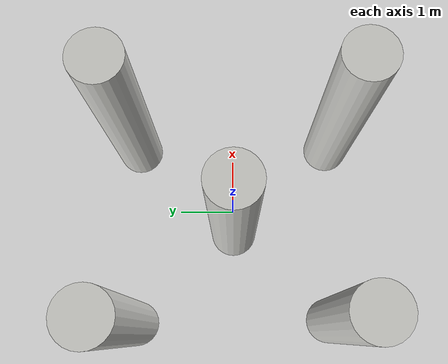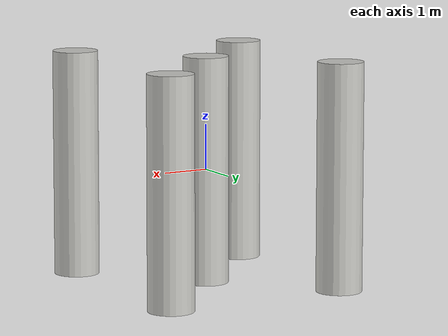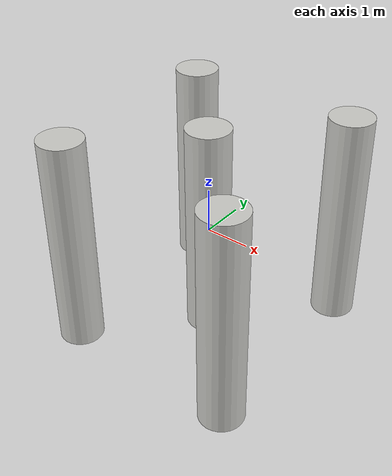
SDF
<?xml version='1.0'?>
<sdf version='1.7'>
  <model name='obstacles_2'>
    <link name='link_0'>
      <inertial>
        <mass>1</mass>
        <inertia>
          <ixx>0.145833</ixx>
          <ixy>0</ixy>
          <ixz>0</ixz>
          <iyy>0.145833</iyy>
          <iyz>0</iyz>
          <izz>0.125</izz>
        </inertia>
      </inertial>
      <pose>-0.004291 -0.013346 0 0 -0 0</pose>
      <visual name='visual'>
        <pose>0 0 0 0 -0 0</pose>
        <geometry>
          <cylinder>
            <radius>0.5</radius>
            <length>5</length>
          </cylinder>
        </geometry>
        <material>
          <lighting>1</lighting>
          <script>
            <uri>file://media/materials/scripts/gazebo.material</uri>
            <name>Gazebo/CeilingTiled</name>
          </script>
          <shader type='pixel'/>
        </material>
        <transparency>0</transparency>
        <cast_shadows>1</cast_shadows>
      </visual>
      <collision name='collision'>
        <laser_retro>0</laser_retro>
        <max_contacts>10</max_contacts>
        <pose>0 0 0 0 -0 0</pose>
        <geometry>
          <cylinder>
            <radius>0.5</radius>
            <length>5</length>
          </cylinder>
        </geometry>
        <surface>
          <friction>
            <ode>
              <mu>1</mu>
              <mu2>1</mu2>
              <fdir1>0 0 0</fdir1>
              <slip1>0</slip1>
              <slip2>0</slip2>
            </ode>
            <torsional>
              <coefficient>1</coefficient>
              <patch_radius>0</patch_radius>
              <surface_radius>0</surface_radius>
              <use_patch_radius>1</use_patch_radius>
              <ode>
                <slip>0</slip>
              </ode>
            </torsional>
          </friction>
          <bounce>
            <restitution_coefficient>0</restitution_coefficient>
            <threshold>1e+06</threshold>
          </bounce>
          <contact>
            <collide_without_contact>0</collide_without_contact>
            <collide_without_contact_bitmask>1</collide_without_contact_bitmask>
            <collide_bitmask>1</collide_bitmask>
            <ode>
              <soft_cfm>0</soft_cfm>
              <soft_erp>0.2</soft_erp>
              <kp>1e+13</kp>
              <kd>1</kd>
              <max_vel>0.01</max_vel>
              <min_depth>0</min_depth>
            </ode>
            <bullet>
              <split_impulse>1</split_impulse>
              <split_impulse_penetration_threshold>-0.01</split_impulse_penetration_threshold>
              <soft_cfm>0</soft_cfm>
              <soft_erp>0.2</soft_erp>
              <kp>1e+13</kp>
              <kd>1</kd>
            </bullet>
          </contact>
        </surface>
      </collision>
    </link>
    <link name='link_1'>
      <inertial>
        <mass>1</mass>
        <inertia>
          <ixx>0.145833</ixx>
          <ixy>0</ixy>
          <ixz>0</ixz>
          <iyy>0.145833</iyy>
          <iyz>0</iyz>
          <izz>0.125</izz>
        </inertia>
      </inertial>
      <pose>-2.07287 2.20557 0 0 -0 0</pose>
      <visual name='visual'>
        <pose>0 0 0 0 -0 0</pose>
        <geometry>
          <cylinder>
            <radius>0.5</radius>
            <length>5</length>
          </cylinder>
        </geometry>
        <material>
          <lighting>1</lighting>
          <script>
            <uri>file://media/materials/scripts/gazebo.material</uri>
            <name>Gazebo/CeilingTiled</name>
          </script>
          <shader type='pixel'/>
        </material>
        <transparency>0</transparency>
        <cast_shadows>1</cast_shadows>
      </visual>
      <collision name='collision'>
        <laser_retro>0</laser_retro>
        <max_contacts>10</max_contacts>
        <pose>0 0 0 0 -0 0</pose>
        <geometry>
          <cylinder>
            <radius>0.5</radius>
            <length>5</length>
          </cylinder>
        </geometry>
        <surface>
          <friction>
            <ode>
              <mu>1</mu>
              <mu2>1</mu2>
              <fdir1>0 0 0</fdir1>
              <slip1>0</slip1>
              <slip2>0</slip2>
            </ode>
            <torsional>
              <coefficient>1</coefficient>
              <patch_radius>0</patch_radius>
              <surface_radius>0</surface_radius>
              <use_patch_radius>1</use_patch_radius>
              <ode>
                <slip>0</slip>
              </ode>
            </torsional>
          </friction>
          <bounce>
            <restitution_coefficient>0</restitution_coefficient>
            <threshold>1e+06</threshold>
          </bounce>
          <contact>
            <collide_without_contact>0</collide_without_contact>
            <collide_without_contact_bitmask>1</collide_without_contact_bitmask>
            <collide_bitmask>1</collide_bitmask>
            <ode>
              <soft_cfm>0</soft_cfm>
              <soft_erp>0.2</soft_erp>
              <kp>1e+13</kp>
              <kd>1</kd>
              <max_vel>0.01</max_vel>
              <min_depth>0</min_depth>
            </ode>
            <bullet>
              <split_impulse>1</split_impulse>
              <split_impulse_penetration_threshold>-0.01</split_impulse_penetration_threshold>
              <soft_cfm>0</soft_cfm>
              <soft_erp>0.2</soft_erp>
              <kp>1e+13</kp>
              <kd>1</kd>
            </bullet>
          </contact>
        </surface>
      </collision>
    </link>
    <link name='link_2'>
      <inertial>
        <mass>1</mass>
        <inertia>
          <ixx>0.145833</ixx>
          <ixy>0</ixy>
          <ixz>0</ixz>
          <iyy>0.145833</iyy>
          <iyz>0</iyz>
          <izz>0.125</izz>
        </inertia>
      </inertial>
      <pose>2.03047 2.21543 0 0 -0 0</pose>
      <visual name='visual'>
        <pose>0 0 0 0 -0 0</pose>
        <geometry>
          <cylinder>
            <radius>0.5</radius>
            <length>5</length>
          </cylinder>
        </geometry>
        <material>
          <lighting>1</lighting>
          <script>
            <uri>file://media/materials/scripts/gazebo.material</uri>
            <name>Gazebo/CeilingTiled</name>
          </script>
          <shader type='pixel'/>
        </material>
        <transparency>0</transparency>
        <cast_shadows>1</cast_shadows>
      </visual>
      <collision name='collision'>
        <laser_retro>0</laser_retro>
        <max_contacts>10</max_contacts>
        <pose>0 0 0 0 -0 0</pose>
        <geometry>
          <cylinder>
            <radius>0.5</radius>
            <length>5</length>
          </cylinder>
        </geometry>
        <surface>
          <friction>
            <ode>
              <mu>1</mu>
              <mu2>1</mu2>
              <fdir1>0 0 0</fdir1>
              <slip1>0</slip1>
              <slip2>0</slip2>
            </ode>
            <torsional>
              <coefficient>1</coefficient>
              <patch_radius>0</patch_radius>
              <surface_radius>0</surface_radius>
              <use_patch_radius>1</use_patch_radius>
              <ode>
                <slip>0</slip>
              </ode>
            </torsional>
          </friction>
          <bounce>
            <restitution_coefficient>0</restitution_coefficient>
            <threshold>1e+06</threshold>
          </bounce>
          <contact>
            <collide_without_contact>0</collide_without_contact>
            <collide_without_contact_bitmask>1</collide_without_contact_bitmask>
            <collide_bitmask>1</collide_bitmask>
            <ode>
              <soft_cfm>0</soft_cfm>
              <soft_erp>0.2</soft_erp>
              <kp>1e+13</kp>
              <kd>1</kd>
              <max_vel>0.01</max_vel>
              <min_depth>0</min_depth>
            </ode>
            <bullet>
              <split_impulse>1</split_impulse>
              <split_impulse_penetration_threshold>-0.01</split_impulse_penetration_threshold>
              <soft_cfm>0</soft_cfm>
              <soft_erp>0.2</soft_erp>
              <kp>1e+13</kp>
              <kd>1</kd>
            </bullet>
          </contact>
        </surface>
      </collision>
    </link>
    <link name='link_3'>
      <inertial>
        <mass>1</mass>
        <inertia>
          <ixx>0.145833</ixx>
          <ixy>0</ixy>
          <ixz>0</ixz>
          <iyy>0.145833</iyy>
          <iyz>0</iyz>
          <izz>0.125</izz>
        </inertia>
      </inertial>
      <pose>-2.01899 -2.17689 0 0 -0 0</pose>
      <visual name='visual'>
        <pose>0 0 0 0 -0 0</pose>
        <geometry>
          <cylinder>
            <radius>0.5</radius>
            <length>5</length>
          </cylinder>
        </geometry>
        <material>
          <lighting>1</lighting>
          <script>
            <uri>file://media/materials/scripts/gazebo.material</uri>
            <name>Gazebo/CeilingTiled</name>
          </script>
          <shader type='pixel'/>
        </material>
        <transparency>0</transparency>
        <cast_shadows>1</cast_shadows>
      </visual>
      <collision name='collision'>
        <laser_retro>0</laser_retro>
        <max_contacts>10</max_contacts>
        <pose>0 0 0 0 -0 0</pose>
        <geometry>
          <cylinder>
            <radius>0.5</radius>
            <length>5</length>
          </cylinder>
        </geometry>
        <surface>
          <friction>
            <ode>
              <mu>1</mu>
              <mu2>1</mu2>
              <fdir1>0 0 0</fdir1>
              <slip1>0</slip1>
              <slip2>0</slip2>
            </ode>
            <torsional>
              <coefficient>1</coefficient>
              <patch_radius>0</patch_radius>
              <surface_radius>0</surface_radius>
              <use_patch_radius>1</use_patch_radius>
              <ode>
                <slip>0</slip>
              </ode>
            </torsional>
          </friction>
          <bounce>
            <restitution_coefficient>0</restitution_coefficient>
            <threshold>1e+06</threshold>
          </bounce>
          <contact>
            <collide_without_contact>0</collide_without_contact>
            <collide_without_contact_bitmask>1</collide_without_contact_bitmask>
            <collide_bitmask>1</collide_bitmask>
            <ode>
              <soft_cfm>0</soft_cfm>
              <soft_erp>0.2</soft_erp>
              <kp>1e+13</kp>
              <kd>1</kd>
              <max_vel>0.01</max_vel>
              <min_depth>0</min_depth>
            </ode>
            <bullet>
              <split_impulse>1</split_impulse>
              <split_impulse_penetration_threshold>-0.01</split_impulse_penetration_threshold>
              <soft_cfm>0</soft_cfm>
              <soft_erp>0.2</soft_erp>
              <kp>1e+13</kp>
              <kd>1</kd>
            </bullet>
          </contact>
        </surface>
      </collision>
    </link>
    <link name='link_4'>
      <inertial>
        <mass>1</mass>
        <inertia>
          <ixx>0.145833</ixx>
          <ixy>0</ixy>
          <ixz>0</ixz>
          <iyy>0.145833</iyy>
          <iyz>0</iyz>
          <izz>0.125</izz>
        </inertia>
      </inertial>
      <pose>2.06573 -2.23076 0 0 -0 0</pose>
      <visual name='visual'>
        <pose>0 0 0 0 -0 0</pose>
        <geometry>
          <cylinder>
            <radius>0.5</radius>
            <length>5</length>
          </cylinder>
        </geometry>
        <material>
          <lighting>1</lighting>
          <script>
            <uri>file://media/materials/scripts/gazebo.material</uri>
            <name>Gazebo/CeilingTiled</name>
          </script>
          <shader type='pixel'/>
        </material>
        <transparency>0</transparency>
        <cast_shadows>1</cast_shadows>
      </visual>
      <collision name='collision'>
        <laser_retro>0</laser_retro>
        <max_contacts>10</max_contacts>
        <pose>0 0 0 0 -0 0</pose>
        <geometry>
          <cylinder>
            <radius>0.5</radius>
            <length>5</length>
          </cylinder>
        </geometry>
        <surface>
          <friction>
            <ode>
              <mu>1</mu>
              <mu2>1</mu2>
              <fdir1>0 0 0</fdir1>
              <slip1>0</slip1>
              <slip2>0</slip2>
            </ode>
            <torsional>
              <coefficient>1</coefficient>
              <patch_radius>0</patch_radius>
              <surface_radius>0</surface_radius>
              <use_patch_radius>1</use_patch_radius>
              <ode>
                <slip>0</slip>
              </ode>
            </torsional>
          </friction>
          <bounce>
            <restitution_coefficient>0</restitution_coefficient>
            <threshold>1e+06</threshold>
          </bounce>
          <contact>
            <collide_without_contact>0</collide_without_contact>
            <collide_without_contact_bitmask>1</collide_without_contact_bitmask>
            <collide_bitmask>1</collide_bitmask>
            <ode>
              <soft_cfm>0</soft_cfm>
              <soft_erp>0.2</soft_erp>
              <kp>1e+13</kp>
              <kd>1</kd>
              <max_vel>0.01</max_vel>
              <min_depth>0</min_depth>
            </ode>
            <bullet>
              <split_impulse>1</split_impulse>
              <split_impulse_penetration_threshold>-0.01</split_impulse_penetration_threshold>
              <soft_cfm>0</soft_cfm>
              <soft_erp>0.2</soft_erp>
              <kp>1e+13</kp>
              <kd>1</kd>
            </bullet>
          </contact>
        </surface>
      </collision>
    </link>
    <static>0</static>
    <allow_auto_disable>1</allow_auto_disable>
  </model>
</sdf>
